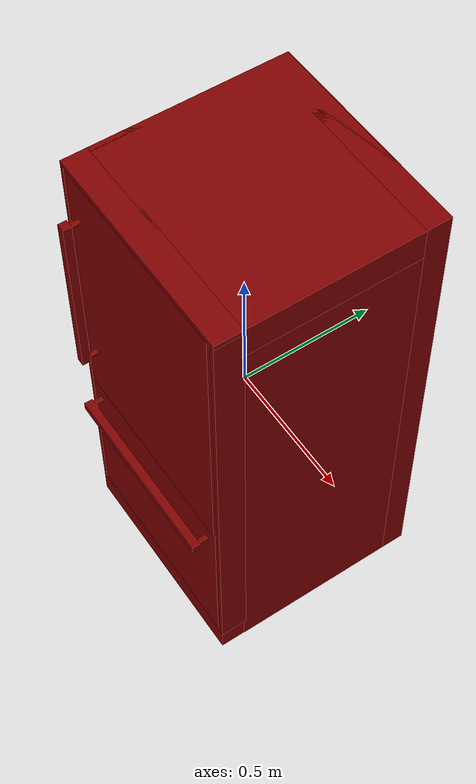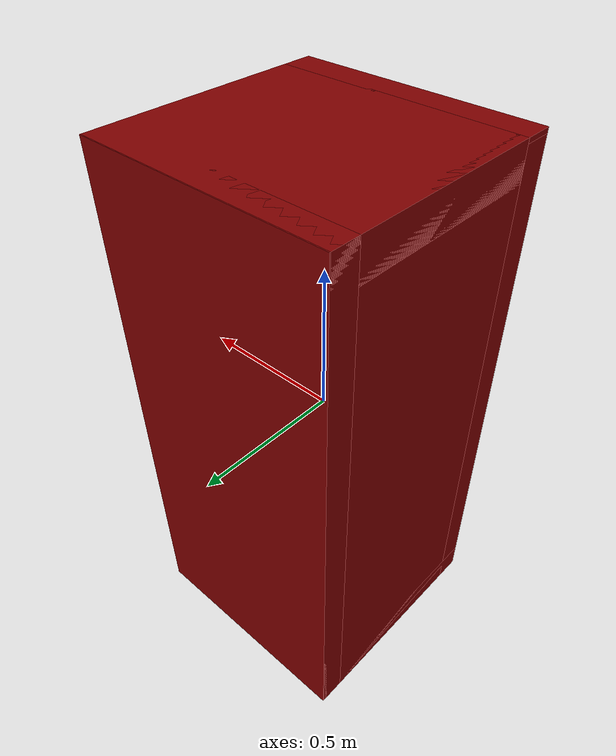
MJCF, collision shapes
<?xml version='1.0' encoding='UTF-8'?>
<mujoco model="model">
  <option timestep="0.005" gravity="0.0 0.0 -9.81"/>
  <compiler angle="radian"/>
  <asset>
    <mesh file="visuals/freezer0.obj" name="freezer0_vis"/>
    <mesh file="visuals/fridge_door.obj" name="fridge_door_vis"/>
    <mesh file="visuals/fridge_door_Clear.obj" name="fridge_door_Clear_vis"/>
    <mesh file="visuals/fridge_drawer0.obj" name="fridge_drawer0_vis"/>
    <mesh file="visuals/Body001.obj" name="Body001_vis"/>
    <texture file="visuals/T_BC001.png" name="Body001_material" type="2d"/>
    <material name="Body001_material" rgba="1 1 1 1.0" texture="Body001_material" shininess="0.1" specular="5"/>
    <texture file="visuals/T_BC001.png" name="freezer0_material" type="2d"/>
    <material name="freezer0_material" rgba="1 1 1 1.0" texture="freezer0_material" shininess="0.1" specular="5"/>
    <texture file="visuals/T_BC001.png" name="fridge_door_material" type="2d"/>
    <material name="fridge_door_material" rgba="1 1 1 1.0" texture="fridge_door_material" shininess="0.1" specular="5"/>
    <texture file="visuals/T_BC001.png" name="fridge_door_Clear_material" type="2d"/>
    <material name="fridge_door_Clear_material" rgba="1 1 1 0.699999988079071" texture="fridge_door_Clear_material" shininess="0.5041156709194183" specular="0.3103448502657381"/>
    <texture file="visuals/T_BC001.png" name="fridge_drawer0_material" type="2d"/>
    <material name="fridge_drawer0_material" rgba="1 1 1 1.0" texture="fridge_drawer0_material" shininess="0.1" specular="5"/>
  </asset>
  <default>
    <default class="visual">
      <geom conaffinity="0" contype="0" group="1" type="mesh"/>
    </default>
    <default class="collision">
      <geom group="0" rgba="0.5 0 0 0.5"/>
    </default>
    <default class="spawn">
      <geom group="0" rgba="1 1 1 0.5" contype="0" conaffinity="0"/>
      <site group="0" rgba="1 1 1 0.5"/>
    </default>
    <default class="region">
      <geom group="1" conaffinity="0" contype="0" rgba="0 1 0 0"/>
    </default>
  </default>
  <worldbody>
    <body>
      <body name="object">
        <geom mesh="Body001_vis" type="mesh" solimp="0.998 0.998 0.001" solref="0.001 1" friction="0.95 0.3 0.1" class="visual" material="Body001_material"/>
        <geom class="collision" type="box" pos="-0.36060840 0.07730131 0.00000000" size="0.03939160332083702 0.3527972102165222 0.9035003781318665" quat="1.0 0.0 0.0 0.0"/>
        <geom class="collision" type="box" pos="0.36129370 0.07730131 -0.00020509" size="0.038706276565790176 0.3527972102165222 0.9032953381538391" quat="1.0 0.0 0.0 0.0"/>
        <geom class="collision" type="box" pos="0.00000001 0.38877468 0.00000003" size="0.4000000059604645 0.04454180598258972 0.9035003781318665" quat="1.0 0.0 0.0 0.0"/>
        <geom class="collision" type="box" pos="0.00000000 -0.31673394 0.89504910" size="0.4000000059604645 0.04994891583919525 0.008451296016573906" quat="1.0 0.0 0.0 0.0"/>
        <geom class="collision" type="box" pos="-0.00000000 0.07727732 0.84438646" size="0.40000003576278687 0.3528211712837219 0.05911397561430931" quat="1.0 0.0 0.0 0.0"/>
        <geom class="collision" type="box" pos="0.00021631 0.08651669 0.15899317" size="0.31428202986717224 0.2376151978969574 0.0027425114531069994" quat="1.0 0.0 0.0 0.0"/>
        <geom class="collision" type="box" pos="0.00293333 0.07750242 -0.17138943" size="0.33709537982940674 0.3525960445404053 0.01726173423230648" quat="1.0 0.0 0.0 0.0"/>
        <geom class="collision" type="box" pos="0.00024785 0.04438059 -0.74037492" size="0.3346840441226959 0.3218856751918793 0.08197566121816635" quat="1.0 0.0 0.0 0.0"/>
        <geom class="collision" type="box" pos="-0.00056296 0.01323961 -0.85587049" size="0.3994370400905609 0.379922479391098 0.04762993007898331" quat="1.0 0.0 0.0 0.0"/>
        <geom class="collision" type="box" pos="0.00021719 0.08872659 0.47894499" size="0.3142828941345215 0.2354053258895874 0.002742161974310875" quat="1.0 0.0 0.0 0.0"/>
        <geom class="collision" type="box" pos="-0.39215046 -0.31673394 0.03508554" size="0.007849552668631077 0.04994891583919525 0.8522788882255554" quat="1.0 0.0 0.0 0.0"/>
        <geom class="collision" type="box" pos="0.39174119 -0.31673394 0.03508554" size="0.008258813060820103 0.04994891583919525 0.8522788882255554" quat="1.0 0.0 0.0 0.0"/>
        <body name="freezer0">
          <geom class="region" name="reg_freezer0" type="box" pos="0.0019510349999999899 0.013431040000000005 -0.431452825" size="0.279294235 0.28365782 0.175648745"/>
          <joint axis="0.0 -1.0 0.0" pos="0.00016415 -0.05739385 -0.48388666" limited="true" name="freezer0_door_joint" range="0.0 0.45" type="slide" damping="1" frictionloss="1" armature=".01" stiffness="0.05"/>
          <geom mesh="freezer0_vis" type="mesh" solimp="0.998 0.998 0.001" solref="0.001 1" friction="0.95 0.3 0.1" class="visual" material="freezer0_material"/>
          <geom class="collision" type="box" pos="0.00044363 -0.35427316 -0.48182186" size="0.373279869556427 0.01240968145430088 0.3192621171474457" quat="1.0 0.0 0.0 0.0" name="freezer0_door_main"/>
          <geom class="collision" type="box" pos="0.00035486 -0.31366269 -0.48916918" size="0.35925111174583435 0.0283515602350235 0.3006931245326996" quat="1.0 0.0 0.0 0.0"/>
          <geom class="collision" type="box" pos="0.00289405 -0.41856359 -0.22031398" size="0.3393283188343048 0.015553818084299564 0.015553982928395271" quat="1.0 0.0 0.0 0.0" name="freezer0_door_handle_main"/>
          <geom class="collision" type="box" pos="0.00182333 0.31050990 -0.44519889" size="0.3177615702152252 0.008827672339975834 0.19456161558628082" quat="1.0 0.0 0.0 0.0"/>
          <geom class="collision" type="box" pos="0.30278730 0.00926247 -0.44426817" size="0.017098793759942055 0.2945729196071625 0.1936328262090683" quat="1.0 0.0 0.0 0.0"/>
          <geom class="collision" type="box" pos="-0.30008548 0.00926247 -0.44426814" size="0.017658745869994164 0.2945729196071625 0.19363285601139069" quat="1.0 0.0 0.0 0.0"/>
          <geom class="collision" type="box" pos="0.00290085 0.01719265 -0.63177359" size="0.3165683150291443 0.3025031089782715 0.017312457785010338" quat="1.0 0.0 0.0 0.0"/>
          <geom class="collision" type="box" pos="0.32576305 -0.38554432 -0.22052012" size="0.007273827213793993 0.020288238301873207 0.007273825351148844" quat="1.0 0.0 0.0 0.0" name="freezer0_door_handle_2"/>
          <geom class="collision" type="box" pos="-0.32626176 -0.38554432 -0.22052018" size="0.007273827213793993 0.020288238301873207 0.007273825351148844" quat="1.0 0.0 0.0 0.0" name="freezer0_door_handle_1"/>
        </body>
        <body name="fridge_door">
          <joint axis="0.0 0.0 1.0" pos="0.37620339 -0.35843362 0.33895284" limited="true" name="fridge_door_joint" range="0.0 1.5707963267948966" type="hinge" damping="1" frictionloss="1" armature=".01" stiffness="0.05"/>
          <geom mesh="fridge_door_vis" type="mesh" solimp="0.998 0.998 0.001" solref="0.001 1" friction="0.95 0.3 0.1" class="visual" material="fridge_door_material"/>
          <geom class="collision" type="box" pos="-0.00032035 -0.19076567 0.60264808" size="0.26442745327949524 0.06321815401315689 0.005809037480503321" quat="1.0 0.0 0.0 0.0"/>
          <geom class="collision" type="box" pos="-0.00032035 -0.12470769 0.63583189" size="0.26442745327949524 0.005808679386973381 0.03903815150260925" quat="1.0 0.0 0.0 0.0"/>
          <geom class="collision" type="box" pos="0.25410596 -0.19076561 0.64159429" size="0.010001174174249172 0.06321899592876434 0.03390580043196678" quat="1.0 0.0 0.0 0.0"/>
          <geom class="collision" type="box" pos="-0.25396255 -0.19076559 0.64159429" size="0.01078528631478548 0.06321942061185837 0.033906009048223495" quat="1.0 0.0 0.0 0.0"/>
          <geom class="collision" type="box" pos="-0.25380757 -0.21459373 0.45569673" size="0.010142018087208271 0.03888382762670517 0.023261407390236855" quat="1.0 0.0 0.0 0.0"/>
          <geom class="collision" type="box" pos="0.25421190 -0.21459370 0.45569673" size="0.009895226918160915 0.038884248584508896 0.02326161041855812" quat="1.0 0.0 0.0 0.0"/>
          <geom class="collision" type="box" pos="0.00007876 -0.17287161 0.45127416" size="0.2640283405780792 0.005808996967971325 0.027062658220529556" quat="1.0 0.0 0.0 0.0"/>
          <geom class="collision" type="box" pos="0.00007876 -0.21459365 0.42870709" size="0.2640283405780792 0.03888507932424545 0.004497626330703497" quat="1.0 0.0 0.0 0.0"/>
          <geom class="collision" type="box" pos="-0.00046099 -0.19152402 0.25701043" size="0.26456812024116516 0.0627363994717598 0.006044963840395212" quat="1.0 0.0 0.0 0.0"/>
          <geom class="collision" type="box" pos="-0.00046099 -0.12595096 0.27926165" size="0.26456812024116516 0.005809182766824961 0.028294293209910393" quat="1.0 0.0 0.0 0.0"/>
          <geom class="collision" type="box" pos="0.25409469 -0.19152396 0.28523126" size="0.010012424550950527 0.06273724138736725 0.022946564480662346" quat="1.0 0.0 0.0 0.0"/>
          <geom class="collision" type="box" pos="-0.25480634 -0.19152394 0.28523126" size="0.010222752578556538 0.06273766607046127 0.02294676937162876" quat="1.0 0.0 0.0 0.0"/>
          <geom class="collision" type="box" pos="-0.00429888 -0.35606851 0.36219060" size="0.37036800384521484 0.010614344850182533 0.5211599469184875" quat="1.0 0.0 0.0 0.0" name="fridge_door_main"/>
          <geom class="collision" type="box" pos="-0.00047704 -0.31713458 0.34265187" size="0.35947009921073914 0.03357524797320366 0.47289738059043884" quat="1.0 0.0 0.0 0.0"/>
          <geom class="collision" type="box" pos="-0.31990767 -0.41635476 0.39097515" size="0.015463664196431637 0.015463660471141338 0.3376253545284271" quat="1.0 0.0 0.0 0.0" name="fridge_door_handle_main"/>
          <geom class="collision" type="box" pos="-0.31979489 -0.38331144 0.71217650" size="0.007273825351148844 0.019111940637230873 0.007273826748132706" quat="1.0 0.0 0.0 0.0" name="fridge_door_handle_2"/>
          <geom class="collision" type="box" pos="-0.31979489 -0.38331144 0.06361802" size="0.007273825351148844 0.019111940637230873 0.007273826748132706" quat="1.0 0.0 0.0 0.0" name="fridge_door_handle_1"/>
          <geom class="collision" type="box" pos="0.27911717 -0.23756959 0.46566182" size="0.017043929547071457 0.048065152019262314 0.28806185722351074" quat="1.0 0.0 0.0 0.0"/>
          <geom class="collision" type="box" pos="-0.27997953 -0.23756959 0.46566182" size="0.017043929547071457 0.048065152019262314 0.28806185722351074" quat="1.0 0.0 0.0 0.0"/>
          <geom class="collision" type="box" pos="0.00119071 -0.23756959 0.73796409" size="0.2934979200363159 0.048065152019262314 0.017044097185134888" quat="1.0 0.0 0.0 0.0"/>
          <geom class="collision" type="box" pos="0.00119071 -0.23756959 0.16594994" size="0.2934979200363159 0.048065152019262314 0.017044097185134888" quat="1.0 0.0 0.0 0.0"/>
          <geom class="collision" type="box" pos="0.00119071 -0.26952578 0.45126379" size="0.29349809885025024 0.018428871408104897 0.27052828669548035" quat="1.0 0.0 0.0 0.0"/>
          <body name="fridge_door_Clear">
            <geom mesh="fridge_door_Clear_vis" type="mesh" solimp="0.998 0.998 0.001" solref="0.001 1" friction="0.95 0.3 0.1" class="visual" material="fridge_door_Clear_material"/>
            <geom class="collision" type="box" pos="-0.00032035 -0.19076567 0.60264808" size="0.26442745327949524 0.06321815401315689 0.005809037480503321" quat="1.0 0.0 0.0 0.0"/>
            <geom class="collision" type="box" pos="-0.00032035 -0.12470769 0.63583189" size="0.26442745327949524 0.005808679386973381 0.03903815150260925" quat="1.0 0.0 0.0 0.0"/>
            <geom class="collision" type="box" pos="0.25410596 -0.19076561 0.64159429" size="0.010001174174249172 0.06321899592876434 0.03390580043196678" quat="1.0 0.0 0.0 0.0"/>
            <geom class="collision" type="box" pos="-0.25396255 -0.19076559 0.64159429" size="0.01078528631478548 0.06321942061185837 0.033906009048223495" quat="1.0 0.0 0.0 0.0"/>
            <geom class="collision" type="box" pos="-0.25380757 -0.21459373 0.45569673" size="0.010142018087208271 0.03888382762670517 0.023261407390236855" quat="1.0 0.0 0.0 0.0"/>
            <geom class="collision" type="box" pos="0.25421190 -0.21459370 0.45569673" size="0.009895226918160915 0.038884248584508896 0.02326161041855812" quat="1.0 0.0 0.0 0.0"/>
            <geom class="collision" type="box" pos="0.00007876 -0.17287161 0.45127416" size="0.2640283405780792 0.005808996967971325 0.027062658220529556" quat="1.0 0.0 0.0 0.0"/>
            <geom class="collision" type="box" pos="0.00007876 -0.21459365 0.42870709" size="0.2640283405780792 0.03888507932424545 0.004497626330703497" quat="1.0 0.0 0.0 0.0"/>
            <geom class="collision" type="box" pos="-0.00046099 -0.19152402 0.25701043" size="0.26456812024116516 0.0627363994717598 0.006044963840395212" quat="1.0 0.0 0.0 0.0"/>
            <geom class="collision" type="box" pos="-0.00046099 -0.12595096 0.27926165" size="0.26456812024116516 0.005809182766824961 0.028294293209910393" quat="1.0 0.0 0.0 0.0"/>
            <geom class="collision" type="box" pos="0.25409469 -0.19152396 0.28523126" size="0.010012424550950527 0.06273724138736725 0.022946564480662346" quat="1.0 0.0 0.0 0.0"/>
            <geom class="collision" type="box" pos="-0.25480634 -0.19152394 0.28523126" size="0.010222752578556538 0.06273766607046127 0.02294676937162876" quat="1.0 0.0 0.0 0.0"/>
          </body>
        </body>
        <body name="fridge_drawer0">
          <geom class="region" name="reg_fridge_drawer0" type="box" pos="-0.003909949999999995 0.09322777499999998 -0.004775664999999998" size="0.25354178 0.202911645 0.116021605"/>
          <joint axis="0.0 -1.0 0.0" pos="-0.00280036 0.08490614 0.00029099" limited="true" name="fridge_drawer0_joint" range="0.0 0.45" type="slide" damping="1" frictionloss="1" armature=".01" stiffness="0.05"/>
          <geom mesh="fridge_drawer0_vis" type="mesh" solimp="0.998 0.998 0.001" solref="0.001 1" friction="0.95 0.3 0.1" class="visual" material="fridge_drawer0_material"/>
          <geom class="collision" type="box" pos="-0.00190419 -0.12985178 0.09852652" size="0.276522159576416 0.014748729765415192 0.047182194888591766" quat="1.0 0.0 0.0 0.0"/>
          <geom class="collision" type="box" pos="-0.00245476 0.09593412 -0.12824778" size="0.26096388697624207 0.21103715896606445 0.0032395191956311464" quat="1.0 0.0 0.0 0.0"/>
          <geom class="collision" type="box" pos="-0.00102934 0.31066282 -0.00566305" size="0.26238930225372314 0.005564889870584011 0.12125833332538605" quat="1.0 0.0 0.0 0.0"/>
          <geom class="collision" type="box" pos="-0.26897025 0.09839719 -0.00566305" size="0.005672976840287447 0.2135002464056015 0.12125835567712784" quat="1.0 0.0 0.0 0.0"/>
          <geom class="collision" type="box" pos="0.26440334 0.10410324 -0.00566303" size="0.005672985687851906 0.2192063182592392 0.12125837802886963" quat="1.0 0.0 0.0 0.0"/>
          <geom class="collision" type="box" pos="-0.00190419 -0.12985291 -0.08143140" size="0.2765568494796753 0.01474984735250473 0.06678828597068787" quat="1.0 0.0 0.0 0.0"/>
          <geom class="collision" type="box" pos="-0.16158637 -0.12985292 0.01695536" size="0.11688061058521271 0.014749866910278797 0.033946458250284195" quat="1.0 0.0 0.0 0.0"/>
          <geom class="collision" type="box" pos="0.18111624 -0.12985295 0.01695536" size="0.09242209047079086 0.014749903231859207 0.033946458250284195" quat="1.0 0.0 0.0 0.0"/>
          <geom class="collision" type="box" pos="0.02332511 -0.14208917 0.03985280" size="0.06702551245689392 0.002514158608391881 0.011265977285802364" quat="1.0 0.0 0.0 0.0"/>
          <geom class="collision" type="box" pos="0.02332511 -0.11603609 0.01724695" size="0.06702577322721481 0.0009330267203040421 0.032816678285598755" quat="1.0 0.0 0.0 0.0"/>
        </body>
        <geom class="region" name="reg_fridge_shelf0" type="box" pos="0.0007615849999999813 0.11262616499999999 0.31718968000000003" size="0.31740298499999997 0.22642391499999998 0.14883366"/>
        <geom class="region" name="reg_fridge_shelf1" type="box" pos="0.0007615849999999813 0.11262616499999999 0.633430225" size="0.31740298499999997 0.22642391499999998 0.146385935"/>
        <geom class="region" name="reg_main" type="box" pos="-4.999999997368221e-09 0.03331683499999999 0.0" size="0.401000005 0.400999675 0.90450044"/>
      </body>
    </body>
  </worldbody>
  <actuator>
    <motor name="freezer0_door_joint_actuator" joint="freezer0_door_joint" gear="50"/>
    <motor name="fridge_door_joint_actuator" joint="fridge_door_joint" gear="50"/>
    <motor name="fridge_drawer0_joint_actuator" joint="fridge_drawer0_joint" gear="50"/>
  </actuator>
</mujoco>
